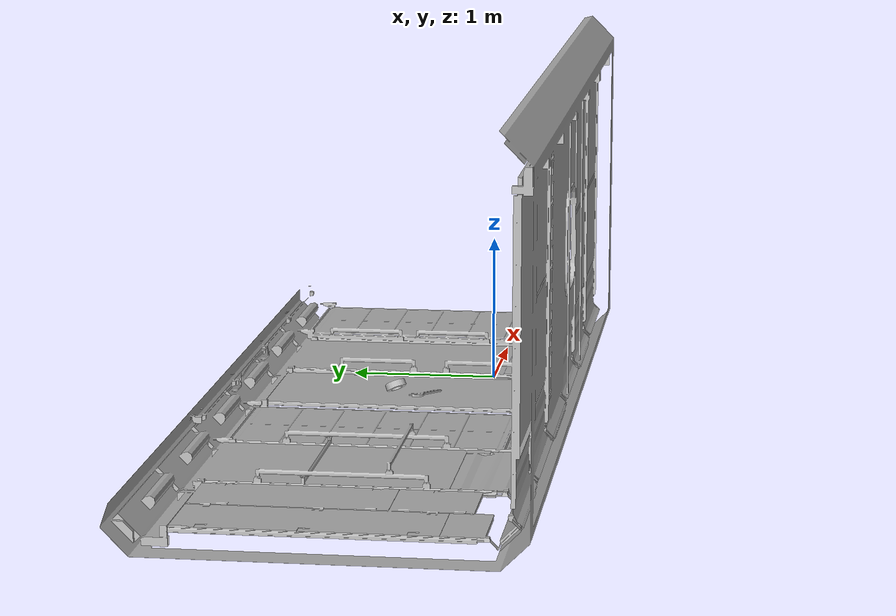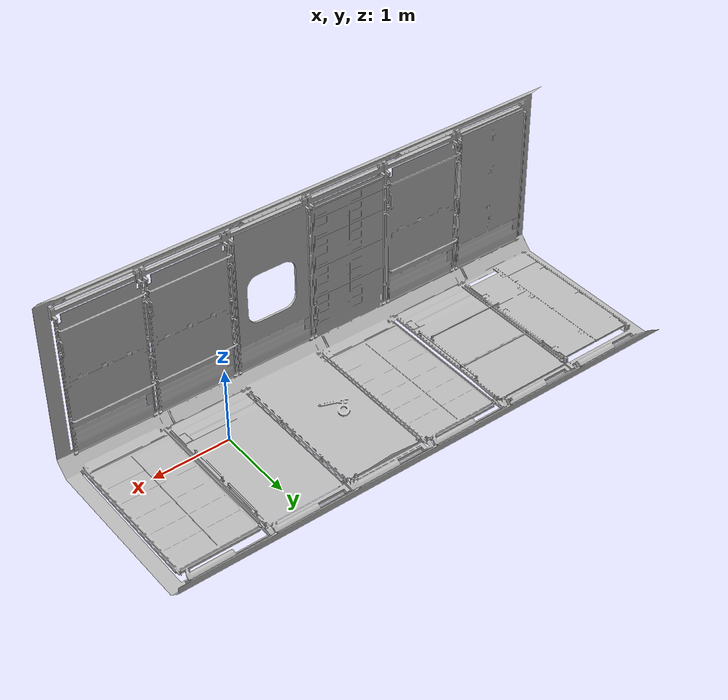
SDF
<?xml version="1.0" ?>
<sdf version="1.5">
  <model name="iss_half">
    <static>true</static>
    <pose>-7.98 .51 4.6 3.14 0 3.14</pose>
    <link name="body">
      <inertial>
        <mass>0.1</mass>
        <inertia>
          <ixx>1</ixx>
          <ixy>0</ixy>
          <ixz>0</ixz>
          <iyy>1</iyy>
          <iyz>0</iyz>
          <izz>1</izz>
        </inertia>
      </inertial>
      <collision name="ISS_Surface">
        <geometry>
          <mesh>
            <uri>model://iss/meshes/US_Lab_ISS_half.dae</uri>
          </mesh>
        </geometry>
      </collision>
      <visual name="ISS_Visual">
        <geometry>
          <mesh>
            <uri>model://iss/meshes//US_Lab_ISS_half.dae</uri>
          </mesh>
        </geometry>
      </visual>
    </link>
  </model>
</sdf>
